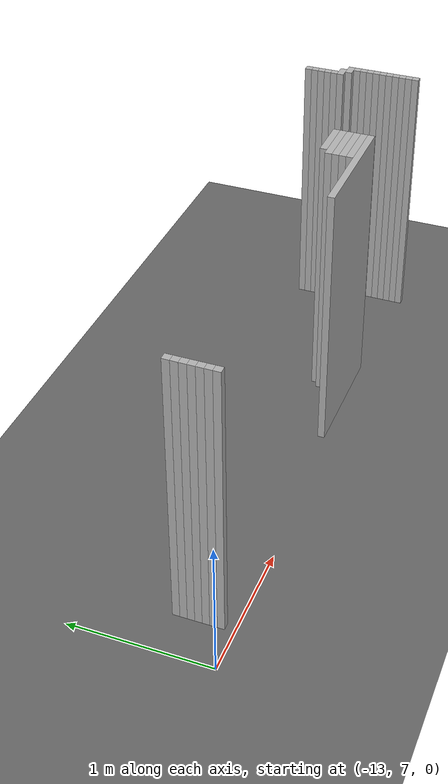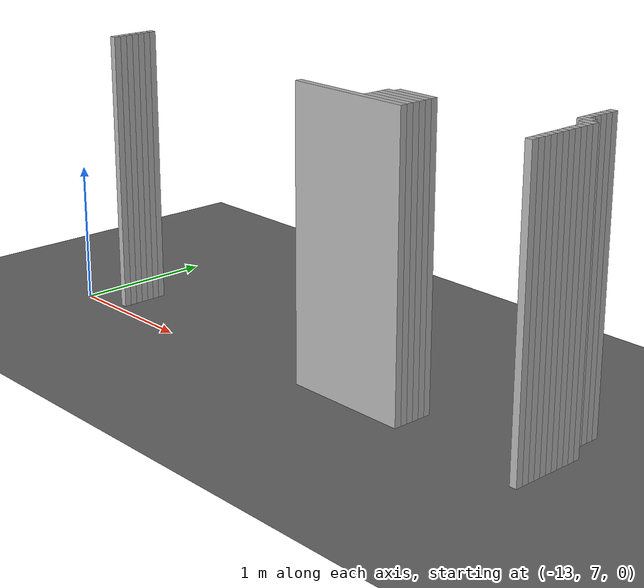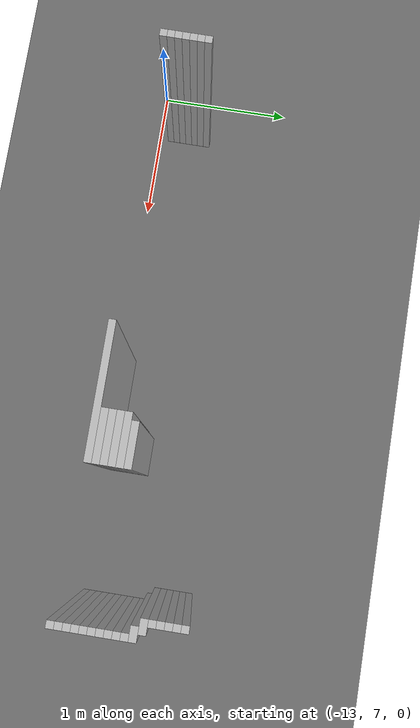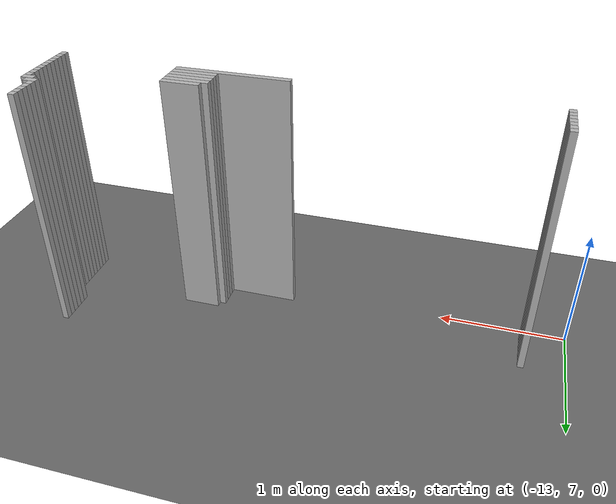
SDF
<sdf version="1.8">
 <world name="real_map">
  <model name="ground">
   <static>true</static>
   <link name="l">
    <collision name="c"><geometry><plane><normal>0 0 1</normal><size>100 100</size></plane></geometry></collision>
    <visual name="v">
     <geometry><plane><normal>0 0 1</normal><size>100 100</size></plane></geometry>
     <material><ambient>0.3 0.3 0.3 1</ambient><diffuse>0.4 0.4 0.4 1</diffuse></material>
    </visual>
   </link>
  </model>
  <model name="walls">
   <static>true</static>
   <link name="w573">
    <pose>-8.966 7.842 1.000 0 0 0</pose>
    <collision name="c"><geometry><box><size>0.050 0.050 2.000</size></box></geometry></collision>
    <visual name="v">
     <geometry><box><size>0.050 0.050 2.000</size></box></geometry>
     <material><ambient>0.7 0.7 0.7 1</ambient><diffuse>0.7 0.7 0.7 1</diffuse></material>
    </visual>
   </link>
   <link name="w577">
    <pose>-8.966 7.792 1.000 0 0 0</pose>
    <collision name="c"><geometry><box><size>0.050 0.050 2.000</size></box></geometry></collision>
    <visual name="v">
     <geometry><box><size>0.050 0.050 2.000</size></box></geometry>
     <material><ambient>0.7 0.7 0.7 1</ambient><diffuse>0.7 0.7 0.7 1</diffuse></material>
    </visual>
   </link>
   <link name="w581">
    <pose>-8.966 7.742 1.000 0 0 0</pose>
    <collision name="c"><geometry><box><size>0.050 0.050 2.000</size></box></geometry></collision>
    <visual name="v">
     <geometry><box><size>0.050 0.050 2.000</size></box></geometry>
     <material><ambient>0.7 0.7 0.7 1</ambient><diffuse>0.7 0.7 0.7 1</diffuse></material>
    </visual>
   </link>
   <link name="w585">
    <pose>-8.966 7.692 1.000 0 0 0</pose>
    <collision name="c"><geometry><box><size>0.050 0.050 2.000</size></box></geometry></collision>
    <visual name="v">
     <geometry><box><size>0.050 0.050 2.000</size></box></geometry>
     <material><ambient>0.7 0.7 0.7 1</ambient><diffuse>0.7 0.7 0.7 1</diffuse></material>
    </visual>
   </link>
   <link name="w589">
    <pose>-8.966 7.642 1.000 0 0 0</pose>
    <collision name="c"><geometry><box><size>0.050 0.050 2.000</size></box></geometry></collision>
    <visual name="v">
     <geometry><box><size>0.050 0.050 2.000</size></box></geometry>
     <material><ambient>0.7 0.7 0.7 1</ambient><diffuse>0.7 0.7 0.7 1</diffuse></material>
    </visual>
   </link>
   <link name="w593">
    <pose>-8.941 7.592 1.000 0 0 0</pose>
    <collision name="c"><geometry><box><size>0.100 0.050 2.000</size></box></geometry></collision>
    <visual name="v">
     <geometry><box><size>0.100 0.050 2.000</size></box></geometry>
     <material><ambient>0.7 0.7 0.7 1</ambient><diffuse>0.7 0.7 0.7 1</diffuse></material>
    </visual>
   </link>
   <link name="w597">
    <pose>-8.891 7.542 1.000 0 0 0</pose>
    <collision name="c"><geometry><box><size>0.100 0.050 2.000</size></box></geometry></collision>
    <visual name="v">
     <geometry><box><size>0.100 0.050 2.000</size></box></geometry>
     <material><ambient>0.7 0.7 0.7 1</ambient><diffuse>0.7 0.7 0.7 1</diffuse></material>
    </visual>
   </link>
   <link name="w601">
    <pose>-8.866 7.492 1.000 0 0 0</pose>
    <collision name="c"><geometry><box><size>0.050 0.050 2.000</size></box></geometry></collision>
    <visual name="v">
     <geometry><box><size>0.050 0.050 2.000</size></box></geometry>
     <material><ambient>0.7 0.7 0.7 1</ambient><diffuse>0.7 0.7 0.7 1</diffuse></material>
    </visual>
   </link>
   <link name="w605">
    <pose>-8.866 7.442 1.000 0 0 0</pose>
    <collision name="c"><geometry><box><size>0.050 0.050 2.000</size></box></geometry></collision>
    <visual name="v">
     <geometry><box><size>0.050 0.050 2.000</size></box></geometry>
     <material><ambient>0.7 0.7 0.7 1</ambient><diffuse>0.7 0.7 0.7 1</diffuse></material>
    </visual>
   </link>
   <link name="w608">
    <pose>-12.666 7.392 1.000 0 0 0</pose>
    <collision name="c"><geometry><box><size>0.050 0.050 2.000</size></box></geometry></collision>
    <visual name="v">
     <geometry><box><size>0.050 0.050 2.000</size></box></geometry>
     <material><ambient>0.7 0.7 0.7 1</ambient><diffuse>0.7 0.7 0.7 1</diffuse></material>
    </visual>
   </link>
   <link name="w609">
    <pose>-8.866 7.392 1.000 0 0 0</pose>
    <collision name="c"><geometry><box><size>0.050 0.050 2.000</size></box></geometry></collision>
    <visual name="v">
     <geometry><box><size>0.050 0.050 2.000</size></box></geometry>
     <material><ambient>0.7 0.7 0.7 1</ambient><diffuse>0.7 0.7 0.7 1</diffuse></material>
    </visual>
   </link>
   <link name="w612">
    <pose>-12.666 7.342 1.000 0 0 0</pose>
    <collision name="c"><geometry><box><size>0.050 0.050 2.000</size></box></geometry></collision>
    <visual name="v">
     <geometry><box><size>0.050 0.050 2.000</size></box></geometry>
     <material><ambient>0.7 0.7 0.7 1</ambient><diffuse>0.7 0.7 0.7 1</diffuse></material>
    </visual>
   </link>
   <link name="w613">
    <pose>-9.991 7.342 1.000 0 0 0</pose>
    <collision name="c"><geometry><box><size>0.300 0.050 2.000</size></box></geometry></collision>
    <visual name="v">
     <geometry><box><size>0.300 0.050 2.000</size></box></geometry>
     <material><ambient>0.7 0.7 0.7 1</ambient><diffuse>0.7 0.7 0.7 1</diffuse></material>
    </visual>
   </link>
   <link name="w614">
    <pose>-8.866 7.342 1.000 0 0 0</pose>
    <collision name="c"><geometry><box><size>0.050 0.050 2.000</size></box></geometry></collision>
    <visual name="v">
     <geometry><box><size>0.050 0.050 2.000</size></box></geometry>
     <material><ambient>0.7 0.7 0.7 1</ambient><diffuse>0.7 0.7 0.7 1</diffuse></material>
    </visual>
   </link>
   <link name="w617">
    <pose>-12.666 7.292 1.000 0 0 0</pose>
    <collision name="c"><geometry><box><size>0.050 0.050 2.000</size></box></geometry></collision>
    <visual name="v">
     <geometry><box><size>0.050 0.050 2.000</size></box></geometry>
     <material><ambient>0.7 0.7 0.7 1</ambient><diffuse>0.7 0.7 0.7 1</diffuse></material>
    </visual>
   </link>
   <link name="w618">
    <pose>-10.016 7.292 1.000 0 0 0</pose>
    <collision name="c"><geometry><box><size>0.350 0.050 2.000</size></box></geometry></collision>
    <visual name="v">
     <geometry><box><size>0.350 0.050 2.000</size></box></geometry>
     <material><ambient>0.7 0.7 0.7 1</ambient><diffuse>0.7 0.7 0.7 1</diffuse></material>
    </visual>
   </link>
   <link name="w619">
    <pose>-8.866 7.292 1.000 0 0 0</pose>
    <collision name="c"><geometry><box><size>0.050 0.050 2.000</size></box></geometry></collision>
    <visual name="v">
     <geometry><box><size>0.050 0.050 2.000</size></box></geometry>
     <material><ambient>0.7 0.7 0.7 1</ambient><diffuse>0.7 0.7 0.7 1</diffuse></material>
    </visual>
   </link>
   <link name="w622">
    <pose>-12.666 7.242 1.000 0 0 0</pose>
    <collision name="c"><geometry><box><size>0.050 0.050 2.000</size></box></geometry></collision>
    <visual name="v">
     <geometry><box><size>0.050 0.050 2.000</size></box></geometry>
     <material><ambient>0.7 0.7 0.7 1</ambient><diffuse>0.7 0.7 0.7 1</diffuse></material>
    </visual>
   </link>
   <link name="w623">
    <pose>-10.016 7.242 1.000 0 0 0</pose>
    <collision name="c"><geometry><box><size>0.350 0.050 2.000</size></box></geometry></collision>
    <visual name="v">
     <geometry><box><size>0.350 0.050 2.000</size></box></geometry>
     <material><ambient>0.7 0.7 0.7 1</ambient><diffuse>0.7 0.7 0.7 1</diffuse></material>
    </visual>
   </link>
   <link name="w624">
    <pose>-8.866 7.242 1.000 0 0 0</pose>
    <collision name="c"><geometry><box><size>0.050 0.050 2.000</size></box></geometry></collision>
    <visual name="v">
     <geometry><box><size>0.050 0.050 2.000</size></box></geometry>
     <material><ambient>0.7 0.7 0.7 1</ambient><diffuse>0.7 0.7 0.7 1</diffuse></material>
    </visual>
   </link>
   <link name="w627">
    <pose>-12.666 7.192 1.000 0 0 0</pose>
    <collision name="c"><geometry><box><size>0.050 0.050 2.000</size></box></geometry></collision>
    <visual name="v">
     <geometry><box><size>0.050 0.050 2.000</size></box></geometry>
     <material><ambient>0.7 0.7 0.7 1</ambient><diffuse>0.7 0.7 0.7 1</diffuse></material>
    </visual>
   </link>
   <link name="w628">
    <pose>-10.016 7.192 1.000 0 0 0</pose>
    <collision name="c"><geometry><box><size>0.350 0.050 2.000</size></box></geometry></collision>
    <visual name="v">
     <geometry><box><size>0.350 0.050 2.000</size></box></geometry>
     <material><ambient>0.7 0.7 0.7 1</ambient><diffuse>0.7 0.7 0.7 1</diffuse></material>
    </visual>
   </link>
   <link name="w629">
    <pose>-8.866 7.192 1.000 0 0 0</pose>
    <collision name="c"><geometry><box><size>0.050 0.050 2.000</size></box></geometry></collision>
    <visual name="v">
     <geometry><box><size>0.050 0.050 2.000</size></box></geometry>
     <material><ambient>0.7 0.7 0.7 1</ambient><diffuse>0.7 0.7 0.7 1</diffuse></material>
    </visual>
   </link>
   <link name="w632">
    <pose>-12.666 7.142 1.000 0 0 0</pose>
    <collision name="c"><geometry><box><size>0.050 0.050 2.000</size></box></geometry></collision>
    <visual name="v">
     <geometry><box><size>0.050 0.050 2.000</size></box></geometry>
     <material><ambient>0.7 0.7 0.7 1</ambient><diffuse>0.7 0.7 0.7 1</diffuse></material>
    </visual>
   </link>
   <link name="w633">
    <pose>-10.016 7.142 1.000 0 0 0</pose>
    <collision name="c"><geometry><box><size>0.350 0.050 2.000</size></box></geometry></collision>
    <visual name="v">
     <geometry><box><size>0.350 0.050 2.000</size></box></geometry>
     <material><ambient>0.7 0.7 0.7 1</ambient><diffuse>0.7 0.7 0.7 1</diffuse></material>
    </visual>
   </link>
   <link name="w634">
    <pose>-8.866 7.142 1.000 0 0 0</pose>
    <collision name="c"><geometry><box><size>0.050 0.050 2.000</size></box></geometry></collision>
    <visual name="v">
     <geometry><box><size>0.050 0.050 2.000</size></box></geometry>
     <material><ambient>0.7 0.7 0.7 1</ambient><diffuse>0.7 0.7 0.7 1</diffuse></material>
    </visual>
   </link>
   <link name="w637">
    <pose>-12.666 7.092 1.000 0 0 0</pose>
    <collision name="c"><geometry><box><size>0.050 0.050 2.000</size></box></geometry></collision>
    <visual name="v">
     <geometry><box><size>0.050 0.050 2.000</size></box></geometry>
     <material><ambient>0.7 0.7 0.7 1</ambient><diffuse>0.7 0.7 0.7 1</diffuse></material>
    </visual>
   </link>
   <link name="w638">
    <pose>-10.291 7.092 1.000 0 0 0</pose>
    <collision name="c"><geometry><box><size>0.900 0.050 2.000</size></box></geometry></collision>
    <visual name="v">
     <geometry><box><size>0.900 0.050 2.000</size></box></geometry>
     <material><ambient>0.7 0.7 0.7 1</ambient><diffuse>0.7 0.7 0.7 1</diffuse></material>
    </visual>
   </link>
   <link name="w639">
    <pose>-8.866 7.092 1.000 0 0 0</pose>
    <collision name="c"><geometry><box><size>0.050 0.050 2.000</size></box></geometry></collision>
    <visual name="v">
     <geometry><box><size>0.050 0.050 2.000</size></box></geometry>
     <material><ambient>0.7 0.7 0.7 1</ambient><diffuse>0.7 0.7 0.7 1</diffuse></material>
    </visual>
   </link>
   <link name="w644">
    <pose>-8.866 7.042 1.000 0 0 0</pose>
    <collision name="c"><geometry><box><size>0.050 0.050 2.000</size></box></geometry></collision>
    <visual name="v">
     <geometry><box><size>0.050 0.050 2.000</size></box></geometry>
     <material><ambient>0.7 0.7 0.7 1</ambient><diffuse>0.7 0.7 0.7 1</diffuse></material>
    </visual>
   </link>
  </model>
 </world>
</sdf>
